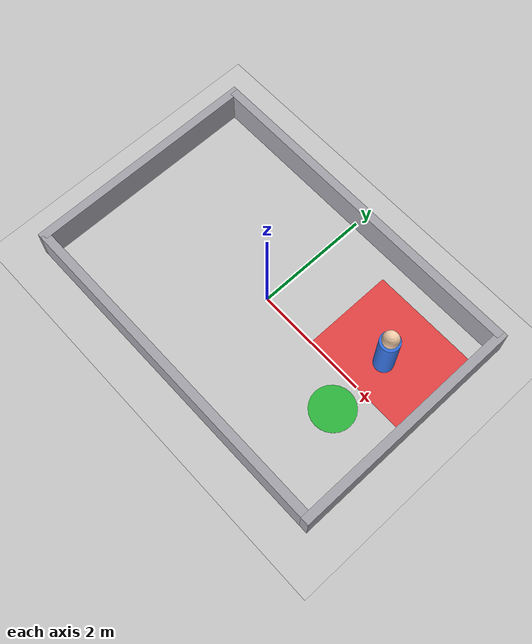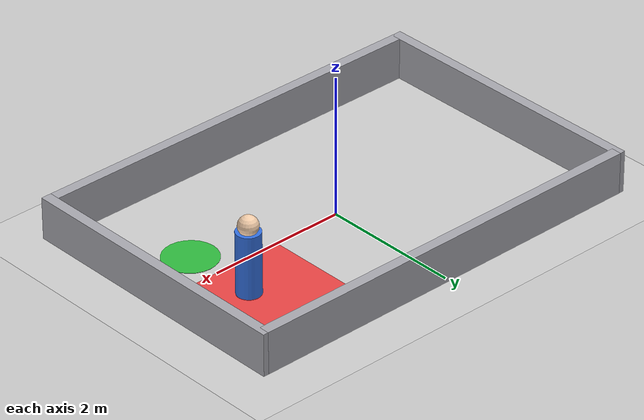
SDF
<?xml version="1.0"?>
<sdf version="1.6">
  <world name="default">

    <include>
      <uri>model://ground_plane</uri>
    </include>

    <include>
      <uri>model://sun</uri>
    </include>

    <scene>
      <shadows>false</shadows>
      <ambient>0.76 0.76 0.76 1.0</ambient>
      <background>0.95 0.95 0.94 1.0</background>
    </scene>

    <gui fullscreen='0'>
      <camera name='user_camera'>
        <pose frame=''>0.0 0.0 11.0 0 1.52 0</pose>
        <view_controller>orbit</view_controller>
        <projection_type>perspective</projection_type>
      </camera>
    </gui>

    <physics type="ode">
      <real_time_update_rate>0</real_time_update_rate>
      <max_step_size>0.001</max_step_size>
      <real_time_factor>0</real_time_factor>
      <ode>
        <solver>
          <type>quick</type>
          <iters>150</iters>
          <precon_iters>0</precon_iters>
          <sor>1.400000</sor>
          <use_dynamic_moi_rescaling>1</use_dynamic_moi_rescaling>
        </solver>
        <constraints>
          <cfm>0.00001</cfm>
          <erp>0.2</erp>
          <contact_max_correcting_vel>2000.000000</contact_max_correcting_vel>
          <contact_surface_layer>0.01000</contact_surface_layer>
        </constraints>
      </ode>
    </physics>

    <!-- Room: 6m x 4m -->
    <model name='zone_goal_layout'>
      <static>true</static>

      <link name='top_wall'>
        <pose>0 2.0 0 0 0 0</pose>
        <collision name='collision'>
          <pose>0 0 0.3 0 0 0</pose>
          <geometry><box><size>6.0 0.15 0.6</size></box></geometry>
        </collision>
        <visual name='visual'>
          <pose>0 0 0.3 0 0 0</pose>
          <geometry><box><size>6.0 0.15 0.6</size></box></geometry>
          <material>
            <ambient>0.65 0.65 0.68 1.0</ambient>
            <diffuse>0.65 0.65 0.68 1.0</diffuse>
          </material>
        </visual>
      </link>

      <link name='bottom_wall'>
        <pose>0 -2.0 0 0 0 0</pose>
        <collision name='collision'>
          <pose>0 0 0.3 0 0 0</pose>
          <geometry><box><size>6.0 0.15 0.6</size></box></geometry>
        </collision>
        <visual name='visual'>
          <pose>0 0 0.3 0 0 0</pose>
          <geometry><box><size>6.0 0.15 0.6</size></box></geometry>
          <material>
            <ambient>0.65 0.65 0.68 1.0</ambient>
            <diffuse>0.65 0.65 0.68 1.0</diffuse>
          </material>
        </visual>
      </link>

      <link name='left_wall'>
        <pose>-3.0 0 0 0 0 1.5708</pose>
        <collision name='collision'>
          <pose>0 0 0.3 0 0 0</pose>
          <geometry><box><size>4.15 0.15 0.6</size></box></geometry>
        </collision>
        <visual name='visual'>
          <pose>0 0 0.3 0 0 0</pose>
          <geometry><box><size>4.15 0.15 0.6</size></box></geometry>
          <material>
            <ambient>0.65 0.65 0.68 1.0</ambient>
            <diffuse>0.65 0.65 0.68 1.0</diffuse>
          </material>
        </visual>
      </link>

      <link name='right_wall'>
        <pose>3.0 0 0 0 0 1.5708</pose>
        <collision name='collision'>
          <pose>0 0 0.3 0 0 0</pose>
          <geometry><box><size>4.15 0.15 0.6</size></box></geometry>
        </collision>
        <visual name='visual'>
          <pose>0 0 0.3 0 0 0</pose>
          <geometry><box><size>4.15 0.15 0.6</size></box></geometry>
          <material>
            <ambient>0.65 0.65 0.68 1.0</ambient>
            <diffuse>0.65 0.65 0.68 1.0</diffuse>
          </material>
        </visual>
      </link>
    </model>

    <!-- Goal marker -->
    <model name='goal_marker'>
      <static>true</static>
      <pose>2.0 -0.5 0 0 0 0</pose>
      <link name='marker'>
        <visual name='pad_visual'>
          <pose>0 0 0.003 0 0 0</pose>
          <geometry>
            <cylinder><radius>0.38</radius><length>0.006</length></cylinder>
          </geometry>
          <material>
            <ambient>0.18 0.72 0.24 1.0</ambient>
            <diffuse>0.18 0.72 0.24 1.0</diffuse>
          </material>
        </visual>
      </link>
    </model>

    <!-- Human near goal (in the danger zone) -->
    <model name='human_near_goal'>
      <static>true</static>
      <pose>2.0 0.6 0 0 0 0</pose>
      <link name='body'>
        <collision name='body_collision'>
          <pose>0 0 0.45 0 0 0</pose>
          <geometry>
            <cylinder><radius>0.17</radius><length>0.90</length></cylinder>
          </geometry>
        </collision>
        <visual name='body_visual'>
          <pose>0 0 0.45 0 0 0</pose>
          <geometry>
            <cylinder><radius>0.17</radius><length>0.90</length></cylinder>
          </geometry>
          <material>
            <ambient>0.20 0.44 0.88 1.0</ambient>
            <diffuse>0.20 0.44 0.88 1.0</diffuse>
          </material>
        </visual>
        <visual name='head_visual'>
          <pose>0 0 0.98 0 0 0</pose>
          <geometry>
            <sphere><radius>0.14</radius></sphere>
          </geometry>
          <material>
            <ambient>0.97 0.82 0.68 1.0</ambient>
            <diffuse>0.97 0.82 0.68 1.0</diffuse>
          </material>
        </visual>
      </link>
    </model>

    <!-- Red danger-zone floor marker (above the goal) -->
    <model name='danger_zone_marker'>
      <static>true</static>
      <pose>2.0 0.8 0 0 0 0</pose>
      <link name='zone'>
        <visual name='zone_visual'>
          <pose>0 0 0.003 0 0 0</pose>
          <geometry>
            <box><size>2.0 1.6 0.006</size></box>
          </geometry>
          <transparency>0.28</transparency>
          <material>
            <ambient>1.0 0.10 0.10 1.0</ambient>
            <diffuse>1.0 0.10 0.10 1.0</diffuse>
          </material>
        </visual>
      </link>
    </model>

  </world>
</sdf>
